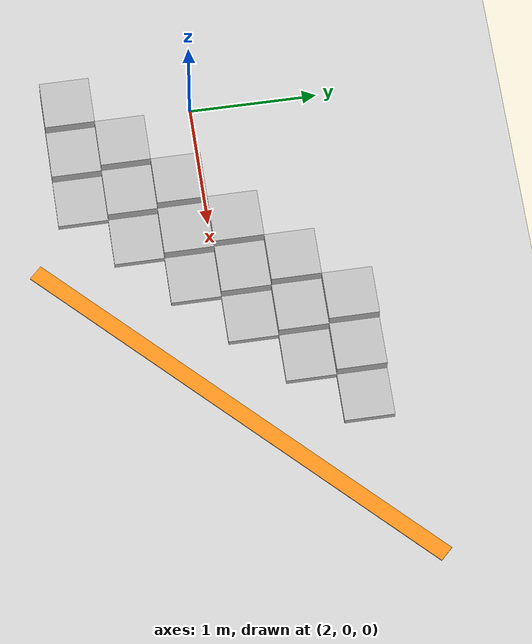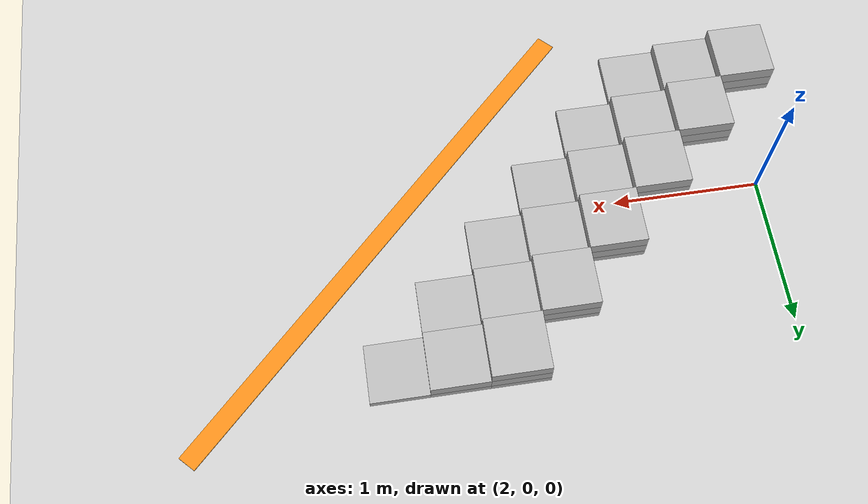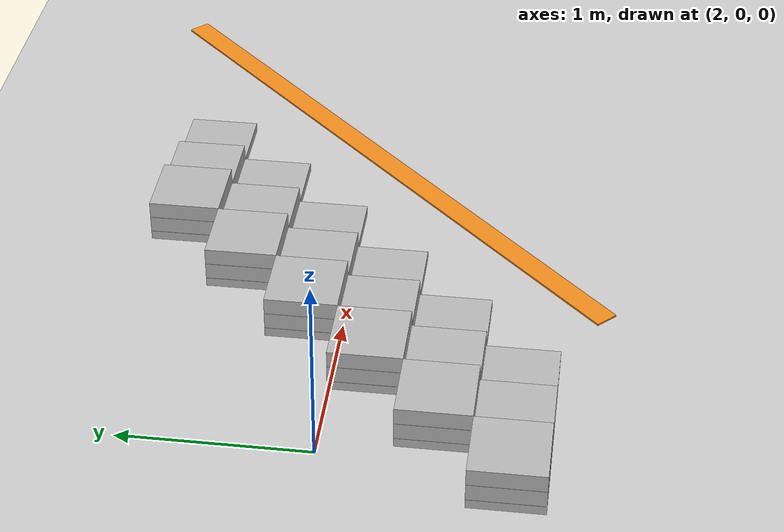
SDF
<sdf version="1.5">
 <world name="trials_task_2">
  <model name="ground_plane">
   <static>1</static>
   <link name="link">
    <collision name="collision">
     <geometry><plane><normal>0 0 1</normal><size>100 100</size></plane></geometry>
     <surface><friction><ode><mu>100</mu><mu2>50</mu2></ode></friction></surface>
    </collision>
    <visual name="visual">
     <cast_shadows>0</cast_shadows>
     <geometry><plane><normal>0 0 1</normal><size>100 100</size></plane></geometry>
     <material>
      <script><uri>file://media/materials/scripts/gazebo.material</uri><name>Gazebo/Grey</name></script>
     </material>
    </visual>
    <velocity_decay><linear>0</linear><angular>0</angular></velocity_decay>
   </link>
  </model>
  <model name="level_block_2">
   <pose>4.62 0.98 0 0 -0 3.14159</pose>
   <link name="block_0_0_0::link">
    <inertial>
     <pose>0 0 0.0714375 0 -0 0</pose>
     <mass>5</mass>
     <inertia>
      <ixx>0.0681466</ixx>
      <ixy>0</ixy>
      <iyy>0.0681466</iyy>
      <ixz>0</ixz>
      <iyz>0</iyz>
      <izz>0.124808</izz>
     </inertia>
    </inertial>
    <visual name="visual"><geometry><box><size>0.387354 0.387354 0.092075</size></box></geometry></visual>
    <collision name="block_collision">
     <geometry><box><size>0.387354 0.387354 0.092075</size></box></geometry>
     <surface>
      <contact><ode><max_vel>0.1</max_vel><min_depth>0.001</min_depth></ode></contact>
      <friction><ode><mu>1</mu><mu2>1</mu2></ode></friction>
     </surface>
    </collision>
    <velocity_decay><linear>0</linear><angular>0</angular></velocity_decay>
    <pose>0 0 0 0 -0 1.5708</pose>
   </link>
   <link name="block_0_1_1::link">
    <inertial>
     <pose>0 0 0.0714375 0 -0 0</pose>
     <mass>5</mass>
     <inertia>
      <ixx>0.0681466</ixx>
      <ixy>0</ixy>
      <iyy>0.0681466</iyy>
      <ixz>0</ixz>
      <iyz>0</iyz>
      <izz>0.124808</izz>
     </inertia>
    </inertial>
    <visual name="visual"><geometry><box><size>0.387354 0.387354 0.092075</size></box></geometry></visual>
    <collision name="block_collision">
     <geometry><box><size>0.387354 0.387354 0.092075</size></box></geometry>
     <surface>
      <contact><ode><max_vel>0.1</max_vel><min_depth>0.001</min_depth></ode></contact>
      <friction><ode><mu>1</mu><mu2>1</mu2></ode></friction>
     </surface>
    </collision>
    <velocity_decay><linear>0</linear><angular>0</angular></velocity_decay>
    <pose>0.387354 0 0.093 0 -0 1.5708</pose>
   </link>
   <link name="block_0_1_0::link">
    <inertial>
     <pose>0 0 0.0714375 0 -0 0</pose>
     <mass>5</mass>
     <inertia>
      <ixx>0.0681466</ixx>
      <ixy>0</ixy>
      <iyy>0.0681466</iyy>
      <ixz>0</ixz>
      <iyz>0</iyz>
      <izz>0.124808</izz>
     </inertia>
    </inertial>
    <visual name="visual"><geometry><box><size>0.387354 0.387354 0.092075</size></box></geometry></visual>
    <collision name="block_collision">
     <geometry><box><size>0.387354 0.387354 0.092075</size></box></geometry>
     <surface>
      <contact><ode><max_vel>0.1</max_vel><min_depth>0.001</min_depth></ode></contact>
      <friction><ode><mu>1</mu><mu2>1</mu2></ode></friction>
     </surface>
    </collision>
    <velocity_decay><linear>0</linear><angular>0</angular></velocity_decay>
    <pose>0.387354 0 0 0 -0 1.5708</pose>
   </link>
   <link name="block_0_2_2::link">
    <inertial>
     <pose>0 0 0.0714375 0 -0 0</pose>
     <mass>5</mass>
     <inertia>
      <ixx>0.0681466</ixx>
      <ixy>0</ixy>
      <iyy>0.0681466</iyy>
      <ixz>0</ixz>
      <iyz>0</iyz>
      <izz>0.124808</izz>
     </inertia>
    </inertial>
    <visual name="visual"><geometry><box><size>0.387354 0.387354 0.092075</size></box></geometry></visual>
    <collision name="block_collision">
     <geometry><box><size>0.387354 0.387354 0.092075</size></box></geometry>
     <surface>
      <contact><ode><max_vel>0.1</max_vel><min_depth>0.001</min_depth></ode></contact>
      <friction><ode><mu>1</mu><mu2>1</mu2></ode></friction>
     </surface>
    </collision>
    <velocity_decay><linear>0</linear><angular>0</angular></velocity_decay>
    <pose>0.774707 0 0.186 0 -0 1.5708</pose>
   </link>
   <link name="block_0_2_1::link">
    <inertial>
     <pose>0 0 0.0714375 0 -0 0</pose>
     <mass>5</mass>
     <inertia>
      <ixx>0.0681466</ixx>
      <ixy>0</ixy>
      <iyy>0.0681466</iyy>
      <ixz>0</ixz>
      <iyz>0</iyz>
      <izz>0.124808</izz>
     </inertia>
    </inertial>
    <visual name="visual"><geometry><box><size>0.387354 0.387354 0.092075</size></box></geometry></visual>
    <collision name="block_collision">
     <geometry><box><size>0.387354 0.387354 0.092075</size></box></geometry>
     <surface>
      <contact><ode><max_vel>0.1</max_vel><min_depth>0.001</min_depth></ode></contact>
      <friction><ode><mu>1</mu><mu2>1</mu2></ode></friction>
     </surface>
    </collision>
    <velocity_decay><linear>0</linear><angular>0</angular></velocity_decay>
    <pose>0.774707 0 0.093 0 -0 1.5708</pose>
   </link>
   <link name="block_0_2_0::link">
    <inertial>
     <pose>0 0 0.0714375 0 -0 0</pose>
     <mass>5</mass>
     <inertia>
      <ixx>0.0681466</ixx>
      <ixy>0</ixy>
      <iyy>0.0681466</iyy>
      <ixz>0</ixz>
      <iyz>0</iyz>
      <izz>0.124808</izz>
     </inertia>
    </inertial>
    <visual name="visual"><geometry><box><size>0.387354 0.387354 0.092075</size></box></geometry></visual>
    <collision name="block_collision">
     <geometry><box><size>0.387354 0.387354 0.092075</size></box></geometry>
     <surface>
      <contact><ode><max_vel>0.1</max_vel><min_depth>0.001</min_depth></ode></contact>
      <friction><ode><mu>1</mu><mu2>1</mu2></ode></friction>
     </surface>
    </collision>
    <velocity_decay><linear>0</linear><angular>0</angular></velocity_decay>
    <pose>0.774707 0 0 0 -0 1.5708</pose>
   </link>
   <link name="block_1_0_0::link">
    <inertial>
     <pose>0 0 0.0714375 0 -0 0</pose>
     <mass>5</mass>
     <inertia>
      <ixx>0.0681466</ixx>
      <ixy>0</ixy>
      <iyy>0.0681466</iyy>
      <ixz>0</ixz>
      <iyz>0</iyz>
      <izz>0.124808</izz>
     </inertia>
    </inertial>
    <visual name="visual"><geometry><box><size>0.387354 0.387354 0.092075</size></box></geometry></visual>
    <collision name="block_collision">
     <geometry><box><size>0.387354 0.387354 0.092075</size></box></geometry>
     <surface>
      <contact><ode><max_vel>0.1</max_vel><min_depth>0.001</min_depth></ode></contact>
      <friction><ode><mu>1</mu><mu2>1</mu2></ode></friction>
     </surface>
    </collision>
    <velocity_decay><linear>0</linear><angular>0</angular></velocity_decay>
    <pose>0.387354 0.387354 0 0 -0 1.5708</pose>
   </link>
   <link name="block_1_1_1::link">
    <inertial>
     <pose>0 0 0.0714375 0 -0 0</pose>
     <mass>5</mass>
     <inertia>
      <ixx>0.0681466</ixx>
      <ixy>0</ixy>
      <iyy>0.0681466</iyy>
      <ixz>0</ixz>
      <iyz>0</iyz>
      <izz>0.124808</izz>
     </inertia>
    </inertial>
    <visual name="visual"><geometry><box><size>0.387354 0.387354 0.092075</size></box></geometry></visual>
    <collision name="block_collision">
     <geometry><box><size>0.387354 0.387354 0.092075</size></box></geometry>
     <surface>
      <contact><ode><max_vel>0.1</max_vel><min_depth>0.001</min_depth></ode></contact>
      <friction><ode><mu>1</mu><mu2>1</mu2></ode></friction>
     </surface>
    </collision>
    <velocity_decay><linear>0</linear><angular>0</angular></velocity_decay>
    <pose>0.774707 0.387354 0.093 0 -0 1.5708</pose>
   </link>
   <link name="block_1_1_0::link">
    <inertial>
     <pose>0 0 0.0714375 0 -0 0</pose>
     <mass>5</mass>
     <inertia>
      <ixx>0.0681466</ixx>
      <ixy>0</ixy>
      <iyy>0.0681466</iyy>
      <ixz>0</ixz>
      <iyz>0</iyz>
      <izz>0.124808</izz>
     </inertia>
    </inertial>
    <visual name="visual"><geometry><box><size>0.387354 0.387354 0.092075</size></box></geometry></visual>
    <collision name="block_collision">
     <geometry><box><size>0.387354 0.387354 0.092075</size></box></geometry>
     <surface>
      <contact><ode><max_vel>0.1</max_vel><min_depth>0.001</min_depth></ode></contact>
      <friction><ode><mu>1</mu><mu2>1</mu2></ode></friction>
     </surface>
    </collision>
    <velocity_decay><linear>0</linear><angular>0</angular></velocity_decay>
    <pose>0.774707 0.387354 0 0 -0 1.5708</pose>
   </link>
   <link name="block_1_2_2::link">
    <inertial>
     <pose>0 0 0.0714375 0 -0 0</pose>
     <mass>5</mass>
     <inertia>
      <ixx>0.0681466</ixx>
      <ixy>0</ixy>
      <iyy>0.0681466</iyy>
      <ixz>0</ixz>
      <iyz>0</iyz>
      <izz>0.124808</izz>
     </inertia>
    </inertial>
    <visual name="visual"><geometry><box><size>0.387354 0.387354 0.092075</size></box></geometry></visual>
    <collision name="block_collision">
     <geometry><box><size>0.387354 0.387354 0.092075</size></box></geometry>
     <surface>
      <contact><ode><max_vel>0.1</max_vel><min_depth>0.001</min_depth></ode></contact>
      <friction><ode><mu>1</mu><mu2>1</mu2></ode></friction>
     </surface>
    </collision>
    <velocity_decay><linear>0</linear><angular>0</angular></velocity_decay>
    <pose>1.16206 0.387354 0.186 0 -0 1.5708</pose>
   </link>
   <link name="block_1_2_1::link">
    <inertial>
     <pose>0 0 0.0714375 0 -0 0</pose>
     <mass>5</mass>
     <inertia>
      <ixx>0.0681466</ixx>
      <ixy>0</ixy>
      <iyy>0.0681466</iyy>
      <ixz>0</ixz>
      <iyz>0</iyz>
      <izz>0.124808</izz>
     </inertia>
    </inertial>
    <visual name="visual"><geometry><box><size>0.387354 0.387354 0.092075</size></box></geometry></visual>
    <collision name="block_collision">
     <geometry><box><size>0.387354 0.387354 0.092075</size></box></geometry>
     <surface>
      <contact><ode><max_vel>0.1</max_vel><min_depth>0.001</min_depth></ode></contact>
      <friction><ode><mu>1</mu><mu2>1</mu2></ode></friction>
     </surface>
    </collision>
    <velocity_decay><linear>0</linear><angular>0</angular></velocity_decay>
    <pose>1.16206 0.387354 0.093 0 -0 1.5708</pose>
   </link>
   <link name="block_1_2_0::link">
    <inertial>
     <pose>0 0 0.0714375 0 -0 0</pose>
     <mass>5</mass>
     <inertia>
      <ixx>0.0681466</ixx>
      <ixy>0</ixy>
      <iyy>0.0681466</iyy>
      <ixz>0</ixz>
      <iyz>0</iyz>
      <izz>0.124808</izz>
     </inertia>
    </inertial>
    <visual name="visual"><geometry><box><size>0.387354 0.387354 0.092075</size></box></geometry></visual>
    <collision name="block_collision">
     <geometry><box><size>0.387354 0.387354 0.092075</size></box></geometry>
     <surface>
      <contact><ode><max_vel>0.1</max_vel><min_depth>0.001</min_depth></ode></contact>
      <friction><ode><mu>1</mu><mu2>1</mu2></ode></friction>
     </surface>
    </collision>
    <velocity_decay><linear>0</linear><angular>0</angular></velocity_decay>
    <pose>1.16206 0.387354 0 0 -0 1.5708</pose>
   </link>
   <link name="block_2_0_0::link">
    <inertial>
     <pose>0 0 0.0714375 0 -0 0</pose>
     <mass>5</mass>
     <inertia>
      <ixx>0.0681466</ixx>
      <ixy>0</ixy>
      <iyy>0.0681466</iyy>
      <ixz>0</ixz>
      <iyz>0</iyz>
      <izz>0.124808</izz>
     </inertia>
    </inertial>
    <visual name="visual"><geometry><box><size>0.387354 0.387354 0.092075</size></box></geometry></visual>
    <collision name="block_collision">
     <geometry><box><size>0.387354 0.387354 0.092075</size></box></geometry>
     <surface>
      <contact><ode><max_vel>0.1</max_vel><min_depth>0.001</min_depth></ode></contact>
      <friction><ode><mu>1</mu><mu2>1</mu2></ode></friction>
     </surface>
    </collision>
    <velocity_decay><linear>0</linear><angular>0</angular></velocity_decay>
    <pose>0.774707 0.774707 0 0 -0 1.5708</pose>
   </link>
   <link name="block_2_1_1::link">
    <inertial>
     <pose>0 0 0.0714375 0 -0 0</pose>
     <mass>5</mass>
     <inertia>
      <ixx>0.0681466</ixx>
      <ixy>0</ixy>
      <iyy>0.0681466</iyy>
      <ixz>0</ixz>
      <iyz>0</iyz>
      <izz>0.124808</izz>
     </inertia>
    </inertial>
    <visual name="visual"><geometry><box><size>0.387354 0.387354 0.092075</size></box></geometry></visual>
    <collision name="block_collision">
     <geometry><box><size>0.387354 0.387354 0.092075</size></box></geometry>
     <surface>
      <contact><ode><max_vel>0.1</max_vel><min_depth>0.001</min_depth></ode></contact>
      <friction><ode><mu>1</mu><mu2>1</mu2></ode></friction>
     </surface>
    </collision>
    <velocity_decay><linear>0</linear><angular>0</angular></velocity_decay>
    <pose>1.16206 0.774707 0.093 0 -0 1.5708</pose>
   </link>
   <link name="block_2_1_0::link">
    <inertial>
     <pose>0 0 0.0714375 0 -0 0</pose>
     <mass>5</mass>
     <inertia>
      <ixx>0.0681466</ixx>
      <ixy>0</ixy>
      <iyy>0.0681466</iyy>
      <ixz>0</ixz>
      <iyz>0</iyz>
      <izz>0.124808</izz>
     </inertia>
    </inertial>
    <visual name="visual"><geometry><box><size>0.387354 0.387354 0.092075</size></box></geometry></visual>
    <collision name="block_collision">
     <geometry><box><size>0.387354 0.387354 0.092075</size></box></geometry>
     <surface>
      <contact><ode><max_vel>0.1</max_vel><min_depth>0.001</min_depth></ode></contact>
      <friction><ode><mu>1</mu><mu2>1</mu2></ode></friction>
     </surface>
    </collision>
    <velocity_decay><linear>0</linear><angular>0</angular></velocity_decay>
    <pose>1.16206 0.774707 0 0 -0 1.5708</pose>
   </link>
   <link name="block_2_2_2::link">
    <inertial>
     <pose>0 0 0.0714375 0 -0 0</pose>
     <mass>5</mass>
     <inertia>
      <ixx>0.0681466</ixx>
      <ixy>0</ixy>
      <iyy>0.0681466</iyy>
      <ixz>0</ixz>
      <iyz>0</iyz>
      <izz>0.124808</izz>
     </inertia>
    </inertial>
    <visual name="visual"><geometry><box><size>0.387354 0.387354 0.092075</size></box></geometry></visual>
    <collision name="block_collision">
     <geometry><box><size>0.387354 0.387354 0.092075</size></box></geometry>
     <surface>
      <contact><ode><max_vel>0.1</max_vel><min_depth>0.001</min_depth></ode></contact>
      <friction><ode><mu>1</mu><mu2>1</mu2></ode></friction>
     </surface>
    </collision>
    <velocity_decay><linear>0</linear><angular>0</angular></velocity_decay>
    <pose>1.54941 0.774707 0.186 0 -0 1.5708</pose>
   </link>
   <link name="block_2_2_1::link">
    <inertial>
     <pose>0 0 0.0714375 0 -0 0</pose>
     <mass>5</mass>
     <inertia>
      <ixx>0.0681466</ixx>
      <ixy>0</ixy>
      <iyy>0.0681466</iyy>
      <ixz>0</ixz>
      <iyz>0</iyz>
      <izz>0.124808</izz>
     </inertia>
    </inertial>
    <visual name="visual"><geometry><box><size>0.387354 0.387354 0.092075</size></box></geometry></visual>
    <collision name="block_collision">
     <geometry><box><size>0.387354 0.387354 0.092075</size></box></geometry>
     <surface>
      <contact><ode><max_vel>0.1</max_vel><min_depth>0.001</min_depth></ode></contact>
      <friction><ode><mu>1</mu><mu2>1</mu2></ode></friction>
     </surface>
    </collision>
    <velocity_decay><linear>0</linear><angular>0</angular></velocity_decay>
    <pose>1.54941 0.774707 0.093 0 -0 1.5708</pose>
   </link>
   <link name="block_2_2_0::link">
    <inertial>
     <pose>0 0 0.0714375 0 -0 0</pose>
     <mass>5</mass>
     <inertia>
      <ixx>0.0681466</ixx>
      <ixy>0</ixy>
      <iyy>0.0681466</iyy>
      <ixz>0</ixz>
      <iyz>0</iyz>
      <izz>0.124808</izz>
     </inertia>
    </inertial>
    <visual name="visual"><geometry><box><size>0.387354 0.387354 0.092075</size></box></geometry></visual>
    <collision name="block_collision">
     <geometry><box><size>0.387354 0.387354 0.092075</size></box></geometry>
     <surface>
      <contact><ode><max_vel>0.1</max_vel><min_depth>0.001</min_depth></ode></contact>
      <friction><ode><mu>1</mu><mu2>1</mu2></ode></friction>
     </surface>
    </collision>
    <velocity_decay><linear>0</linear><angular>0</angular></velocity_decay>
    <pose>1.54941 0.774707 0 0 -0 1.5708</pose>
   </link>
   <link name="block_3_0_0::link">
    <inertial>
     <pose>0 0 0.0714375 0 -0 0</pose>
     <mass>5</mass>
     <inertia>
      <ixx>0.0681466</ixx>
      <ixy>0</ixy>
      <iyy>0.0681466</iyy>
      <ixz>0</ixz>
      <iyz>0</iyz>
      <izz>0.124808</izz>
     </inertia>
    </inertial>
    <visual name="visual"><geometry><box><size>0.387354 0.387354 0.092075</size></box></geometry></visual>
    <collision name="block_collision">
     <geometry><box><size>0.387354 0.387354 0.092075</size></box></geometry>
     <surface>
      <contact><ode><max_vel>0.1</max_vel><min_depth>0.001</min_depth></ode></contact>
      <friction><ode><mu>1</mu><mu2>1</mu2></ode></friction>
     </surface>
    </collision>
    <velocity_decay><linear>0</linear><angular>0</angular></velocity_decay>
    <pose>1.16206 1.16206 0 0 -0 1.5708</pose>
   </link>
   <link name="block_3_1_1::link">
    <inertial>
     <pose>0 0 0.0714375 0 -0 0</pose>
     <mass>5</mass>
     <inertia>
      <ixx>0.0681466</ixx>
      <ixy>0</ixy>
      <iyy>0.0681466</iyy>
      <ixz>0</ixz>
      <iyz>0</iyz>
      <izz>0.124808</izz>
     </inertia>
    </inertial>
    <visual name="visual"><geometry><box><size>0.387354 0.387354 0.092075</size></box></geometry></visual>
    <collision name="block_collision">
     <geometry><box><size>0.387354 0.387354 0.092075</size></box></geometry>
     <surface>
      <contact><ode><max_vel>0.1</max_vel><min_depth>0.001</min_depth></ode></contact>
      <friction><ode><mu>1</mu><mu2>1</mu2></ode></friction>
     </surface>
    </collision>
    <velocity_decay><linear>0</linear><angular>0</angular></velocity_decay>
    <pose>1.54941 1.16206 0.093 0 -0 1.5708</pose>
   </link>
   <link name="block_3_1_0::link">
    <inertial>
     <pose>0 0 0.0714375 0 -0 0</pose>
     <mass>5</mass>
     <inertia>
      <ixx>0.0681466</ixx>
      <ixy>0</ixy>
      <iyy>0.0681466</iyy>
      <ixz>0</ixz>
      <iyz>0</iyz>
      <izz>0.124808</izz>
     </inertia>
    </inertial>
    <visual name="visual"><geometry><box><size>0.387354 0.387354 0.092075</size></box></geometry></visual>
    <collision name="block_collision">
     <geometry><box><size>0.387354 0.387354 0.092075</size></box></geometry>
     <surface>
      <contact><ode><max_vel>0.1</max_vel><min_depth>0.001</min_depth></ode></contact>
      <friction><ode><mu>1</mu><mu2>1</mu2></ode></friction>
     </surface>
    </collision>
    <velocity_decay><linear>0</linear><angular>0</angular></velocity_decay>
    <pose>1.54941 1.16206 0 0 -0 1.5708</pose>
   </link>
   <link name="block_3_2_2::link">
    <inertial>
     <pose>0 0 0.0714375 0 -0 0</pose>
     <mass>5</mass>
     <inertia>
      <ixx>0.0681466</ixx>
      <ixy>0</ixy>
      <iyy>0.0681466</iyy>
      <ixz>0</ixz>
      <iyz>0</iyz>
      <izz>0.124808</izz>
     </inertia>
    </inertial>
    <visual name="visual"><geometry><box><size>0.387354 0.387354 0.092075</size></box></geometry></visual>
    <collision name="block_collision">
     <geometry><box><size>0.387354 0.387354 0.092075</size></box></geometry>
     <surface>
      <contact><ode><max_vel>0.1</max_vel><min_depth>0.001</min_depth></ode></contact>
      <friction><ode><mu>1</mu><mu2>1</mu2></ode></friction>
     </surface>
    </collision>
    <velocity_decay><linear>0</linear><angular>0</angular></velocity_decay>
    <pose>1.93677 1.16206 0.186 0 -0 1.5708</pose>
   </link>
   <link name="block_3_2_1::link">
    <inertial>
     <pose>0 0 0.0714375 0 -0 0</pose>
     <mass>5</mass>
     <inertia>
      <ixx>0.0681466</ixx>
      <ixy>0</ixy>
      <iyy>0.0681466</iyy>
      <ixz>0</ixz>
      <iyz>0</iyz>
      <izz>0.124808</izz>
     </inertia>
    </inertial>
    <visual name="visual"><geometry><box><size>0.387354 0.387354 0.092075</size></box></geometry></visual>
    <collision name="block_collision">
     <geometry><box><size>0.387354 0.387354 0.092075</size></box></geometry>
     <surface>
      <contact><ode><max_vel>0.1</max_vel><min_depth>0.001</min_depth></ode></contact>
      <friction><ode><mu>1</mu><mu2>1</mu2></ode></friction>
     </surface>
    </collision>
    <velocity_decay><linear>0</linear><angular>0</angular></velocity_decay>
    <pose>1.93677 1.16206 0.093 0 -0 1.5708</pose>
   </link>
   <link name="block_3_2_0::link">
    <inertial>
     <pose>0 0 0.0714375 0 -0 0</pose>
     <mass>5</mass>
     <inertia>
      <ixx>0.0681466</ixx>
      <ixy>0</ixy>
      <iyy>0.0681466</iyy>
      <ixz>0</ixz>
      <iyz>0</iyz>
      <izz>0.124808</izz>
     </inertia>
    </inertial>
    <visual name="visual"><geometry><box><size>0.387354 0.387354 0.092075</size></box></geometry></visual>
    <collision name="block_collision">
     <geometry><box><size>0.387354 0.387354 0.092075</size></box></geometry>
     <surface>
      <contact><ode><max_vel>0.1</max_vel><min_depth>0.001</min_depth></ode></contact>
      <friction><ode><mu>1</mu><mu2>1</mu2></ode></friction>
     </surface>
    </collision>
    <velocity_decay><linear>0</linear><angular>0</angular></velocity_decay>
    <pose>1.93677 1.16206 0 0 -0 1.5708</pose>
   </link>
   <link name="block_4_0_0::link">
    <inertial>
     <pose>0 0 0.0714375 0 -0 0</pose>
     <mass>5</mass>
     <inertia>
      <ixx>0.0681466</ixx>
      <ixy>0</ixy>
      <iyy>0.0681466</iyy>
      <ixz>0</ixz>
      <iyz>0</iyz>
      <izz>0.124808</izz>
     </inertia>
    </inertial>
    <visual name="visual"><geometry><box><size>0.387354 0.387354 0.092075</size></box></geometry></visual>
    <collision name="block_collision">
     <geometry><box><size>0.387354 0.387354 0.092075</size></box></geometry>
     <surface>
      <contact><ode><max_vel>0.1</max_vel><min_depth>0.001</min_depth></ode></contact>
      <friction><ode><mu>1</mu><mu2>1</mu2></ode></friction>
     </surface>
    </collision>
    <velocity_decay><linear>0</linear><angular>0</angular></velocity_decay>
    <pose>1.54941 1.54941 0 0 -0 1.5708</pose>
   </link>
   <link name="block_4_1_1::link">
    <inertial>
     <pose>0 0 0.0714375 0 -0 0</pose>
     <mass>5</mass>
     <inertia>
      <ixx>0.0681466</ixx>
      <ixy>0</ixy>
      <iyy>0.0681466</iyy>
      <ixz>0</ixz>
      <iyz>0</iyz>
      <izz>0.124808</izz>
     </inertia>
    </inertial>
    <visual name="visual"><geometry><box><size>0.387354 0.387354 0.092075</size></box></geometry></visual>
    <collision name="block_collision">
     <geometry><box><size>0.387354 0.387354 0.092075</size></box></geometry>
     <surface>
      <contact><ode><max_vel>0.1</max_vel><min_depth>0.001</min_depth></ode></contact>
      <friction><ode><mu>1</mu><mu2>1</mu2></ode></friction>
     </surface>
    </collision>
    <velocity_decay><linear>0</linear><angular>0</angular></velocity_decay>
    <pose>1.93677 1.54941 0.093 0 -0 1.5708</pose>
   </link>
   <link name="block_4_1_0::link">
    <inertial>
     <pose>0 0 0.0714375 0 -0 0</pose>
     <mass>5</mass>
     <inertia>
      <ixx>0.0681466</ixx>
      <ixy>0</ixy>
      <iyy>0.0681466</iyy>
      <ixz>0</ixz>
      <iyz>0</iyz>
      <izz>0.124808</izz>
     </inertia>
    </inertial>
    <visual name="visual"><geometry><box><size>0.387354 0.387354 0.092075</size></box></geometry></visual>
    <collision name="block_collision">
     <geometry><box><size>0.387354 0.387354 0.092075</size></box></geometry>
     <surface>
      <contact><ode><max_vel>0.1</max_vel><min_depth>0.001</min_depth></ode></contact>
      <friction><ode><mu>1</mu><mu2>1</mu2></ode></friction>
     </surface>
    </collision>
    <velocity_decay><linear>0</linear><angular>0</angular></velocity_decay>
    <pose>1.93677 1.54941 0 0 -0 1.5708</pose>
   </link>
   <link name="block_4_2_2::link">
    <inertial>
     <pose>0 0 0.0714375 0 -0 0</pose>
     <mass>5</mass>
     <inertia>
      <ixx>0.0681466</ixx>
      <ixy>0</ixy>
      <iyy>0.0681466</iyy>
      <ixz>0</ixz>
      <iyz>0</iyz>
      <izz>0.124808</izz>
     </inertia>
    </inertial>
    <visual name="visual"><geometry><box><size>0.387354 0.387354 0.092075</size></box></geometry></visual>
    <collision name="block_collision">
     <geometry><box><size>0.387354 0.387354 0.092075</size></box></geometry>
     <surface>
      <contact><ode><max_vel>0.1</max_vel><min_depth>0.001</min_depth></ode></contact>
      <friction><ode><mu>1</mu><mu2>1</mu2></ode></friction>
     </surface>
    </collision>
    <velocity_decay><linear>0</linear><angular>0</angular></velocity_decay>
    <pose>2.32412 1.54941 0.186 0 -0 1.5708</pose>
   </link>
   <link name="block_4_2_1::link">
    <inertial>
     <pose>0 0 0.0714375 0 -0 0</pose>
     <mass>5</mass>
     <inertia>
      <ixx>0.0681466</ixx>
      <ixy>0</ixy>
      <iyy>0.0681466</iyy>
      <ixz>0</ixz>
      <iyz>0</iyz>
      <izz>0.124808</izz>
     </inertia>
    </inertial>
    <visual name="visual"><geometry><box><size>0.387354 0.387354 0.092075</size></box></geometry></visual>
    <collision name="block_collision">
     <geometry><box><size>0.387354 0.387354 0.092075</size></box></geometry>
     <surface>
      <contact><ode><max_vel>0.1</max_vel><min_depth>0.001</min_depth></ode></contact>
      <friction><ode><mu>1</mu><mu2>1</mu2></ode></friction>
     </surface>
    </collision>
    <velocity_decay><linear>0</linear><angular>0</angular></velocity_decay>
    <pose>2.32412 1.54941 0.093 0 -0 1.5708</pose>
   </link>
   <link name="block_4_2_0::link">
    <inertial>
     <pose>0 0 0.0714375 0 -0 0</pose>
     <mass>5</mass>
     <inertia>
      <ixx>0.0681466</ixx>
      <ixy>0</ixy>
      <iyy>0.0681466</iyy>
      <ixz>0</ixz>
      <iyz>0</iyz>
      <izz>0.124808</izz>
     </inertia>
    </inertial>
    <visual name="visual"><geometry><box><size>0.387354 0.387354 0.092075</size></box></geometry></visual>
    <collision name="block_collision">
     <geometry><box><size>0.387354 0.387354 0.092075</size></box></geometry>
     <surface>
      <contact><ode><max_vel>0.1</max_vel><min_depth>0.001</min_depth></ode></contact>
      <friction><ode><mu>1</mu><mu2>1</mu2></ode></friction>
     </surface>
    </collision>
    <velocity_decay><linear>0</linear><angular>0</angular></velocity_decay>
    <pose>2.32412 1.54941 0 0 -0 1.5708</pose>
   </link>
   <link name="block_5_0_0::link">
    <inertial>
     <pose>0 0 0.0714375 0 -0 0</pose>
     <mass>5</mass>
     <inertia>
      <ixx>0.0681466</ixx>
      <ixy>0</ixy>
      <iyy>0.0681466</iyy>
      <ixz>0</ixz>
      <iyz>0</iyz>
      <izz>0.124808</izz>
     </inertia>
    </inertial>
    <visual name="visual"><geometry><box><size>0.387354 0.387354 0.092075</size></box></geometry></visual>
    <collision name="block_collision">
     <geometry><box><size>0.387354 0.387354 0.092075</size></box></geometry>
     <surface>
      <contact><ode><max_vel>0.1</max_vel><min_depth>0.001</min_depth></ode></contact>
      <friction><ode><mu>1</mu><mu2>1</mu2></ode></friction>
     </surface>
    </collision>
    <velocity_decay><linear>0</linear><angular>0</angular></velocity_decay>
    <pose>1.93677 1.93677 0 0 -0 1.5708</pose>
   </link>
   <link name="block_5_1_1::link">
    <inertial>
     <pose>0 0 0.0714375 0 -0 0</pose>
     <mass>5</mass>
     <inertia>
      <ixx>0.0681466</ixx>
      <ixy>0</ixy>
      <iyy>0.0681466</iyy>
      <ixz>0</ixz>
      <iyz>0</iyz>
      <izz>0.124808</izz>
     </inertia>
    </inertial>
    <visual name="visual"><geometry><box><size>0.387354 0.387354 0.092075</size></box></geometry></visual>
    <collision name="block_collision">
     <geometry><box><size>0.387354 0.387354 0.092075</size></box></geometry>
     <surface>
      <contact><ode><max_vel>0.1</max_vel><min_depth>0.001</min_depth></ode></contact>
      <friction><ode><mu>1</mu><mu2>1</mu2></ode></friction>
     </surface>
    </collision>
    <velocity_decay><linear>0</linear><angular>0</angular></velocity_decay>
    <pose>2.32412 1.93677 0.093 0 -0 1.5708</pose>
   </link>
   <link name="block_5_1_0::link">
    <inertial>
     <pose>0 0 0.0714375 0 -0 0</pose>
     <mass>5</mass>
     <inertia>
      <ixx>0.0681466</ixx>
      <ixy>0</ixy>
      <iyy>0.0681466</iyy>
      <ixz>0</ixz>
      <iyz>0</iyz>
      <izz>0.124808</izz>
     </inertia>
    </inertial>
    <visual name="visual"><geometry><box><size>0.387354 0.387354 0.092075</size></box></geometry></visual>
    <collision name="block_collision">
     <geometry><box><size>0.387354 0.387354 0.092075</size></box></geometry>
     <surface>
      <contact><ode><max_vel>0.1</max_vel><min_depth>0.001</min_depth></ode></contact>
      <friction><ode><mu>1</mu><mu2>1</mu2></ode></friction>
     </surface>
    </collision>
    <velocity_decay><linear>0</linear><angular>0</angular></velocity_decay>
    <pose>2.32412 1.93677 0 0 -0 1.5708</pose>
   </link>
   <link name="block_5_2_2::link">
    <inertial>
     <pose>0 0 0.0714375 0 -0 0</pose>
     <mass>5</mass>
     <inertia>
      <ixx>0.0681466</ixx>
      <ixy>0</ixy>
      <iyy>0.0681466</iyy>
      <ixz>0</ixz>
      <iyz>0</iyz>
      <izz>0.124808</izz>
     </inertia>
    </inertial>
    <visual name="visual"><geometry><box><size>0.387354 0.387354 0.092075</size></box></geometry></visual>
    <collision name="block_collision">
     <geometry><box><size>0.387354 0.387354 0.092075</size></box></geometry>
     <surface>
      <contact><ode><max_vel>0.1</max_vel><min_depth>0.001</min_depth></ode></contact>
      <friction><ode><mu>1</mu><mu2>1</mu2></ode></friction>
     </surface>
    </collision>
    <velocity_decay><linear>0</linear><angular>0</angular></velocity_decay>
    <pose>2.71147 1.93677 0.186 0 -0 1.5708</pose>
   </link>
   <link name="block_5_2_1::link">
    <inertial>
     <pose>0 0 0.0714375 0 -0 0</pose>
     <mass>5</mass>
     <inertia>
      <ixx>0.0681466</ixx>
      <ixy>0</ixy>
      <iyy>0.0681466</iyy>
      <ixz>0</ixz>
      <iyz>0</iyz>
      <izz>0.124808</izz>
     </inertia>
    </inertial>
    <visual name="visual"><geometry><box><size>0.387354 0.387354 0.092075</size></box></geometry></visual>
    <collision name="block_collision">
     <geometry><box><size>0.387354 0.387354 0.092075</size></box></geometry>
     <surface>
      <contact><ode><max_vel>0.1</max_vel><min_depth>0.001</min_depth></ode></contact>
      <friction><ode><mu>1</mu><mu2>1</mu2></ode></friction>
     </surface>
    </collision>
    <velocity_decay><linear>0</linear><angular>0</angular></velocity_decay>
    <pose>2.71147 1.93677 0.093 0 -0 1.5708</pose>
   </link>
   <link name="block_5_2_0::link">
    <inertial>
     <pose>0 0 0.0714375 0 -0 0</pose>
     <mass>5</mass>
     <inertia>
      <ixx>0.0681466</ixx>
      <ixy>0</ixy>
      <iyy>0.0681466</iyy>
      <ixz>0</ixz>
      <iyz>0</iyz>
      <izz>0.124808</izz>
     </inertia>
    </inertial>
    <visual name="visual"><geometry><box><size>0.387354 0.387354 0.092075</size></box></geometry></visual>
    <collision name="block_collision">
     <geometry><box><size>0.387354 0.387354 0.092075</size></box></geometry>
     <surface>
      <contact><ode><max_vel>0.1</max_vel><min_depth>0.001</min_depth></ode></contact>
      <friction><ode><mu>1</mu><mu2>1</mu2></ode></friction>
     </surface>
    </collision>
    <velocity_decay><linear>0</linear><angular>0</angular></velocity_decay>
    <pose>2.71147 1.93677 0 0 -0 1.5708</pose>
   </link>
   <static>1</static>
  </model>
  <model name="orange_tape">
   <static>1</static>
   <pose>4.6 0 0 0 0 -0.785397</pose>
   <link name="link">
    <visual name="visual">
     <geometry><box><size>0.13 3.89146 0.01</size></box></geometry>
     <material><script><name>Gazebo/Orange</name><uri>__default__</uri></script></material>
    </visual>
    <velocity_decay><linear>0</linear><angular>0</angular></velocity_decay>
   </link>
  </model>
 </world>
</sdf>
